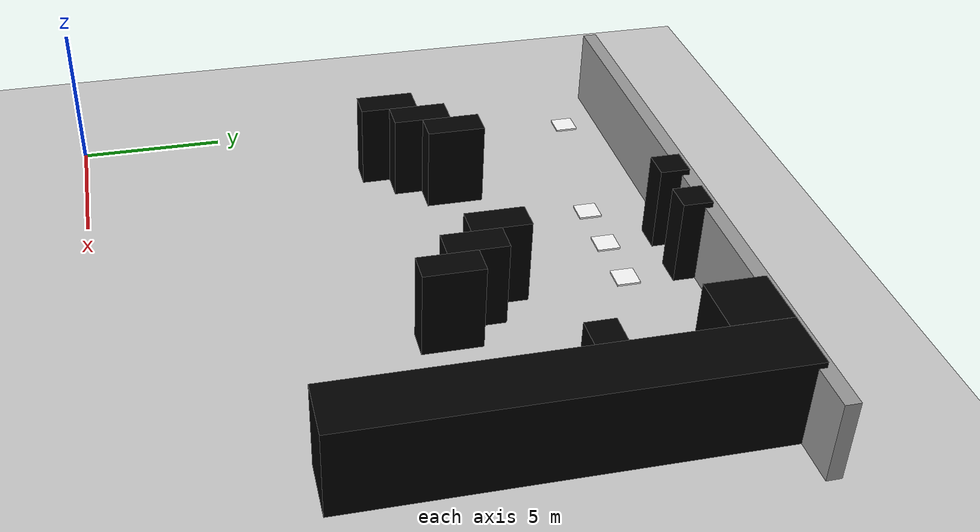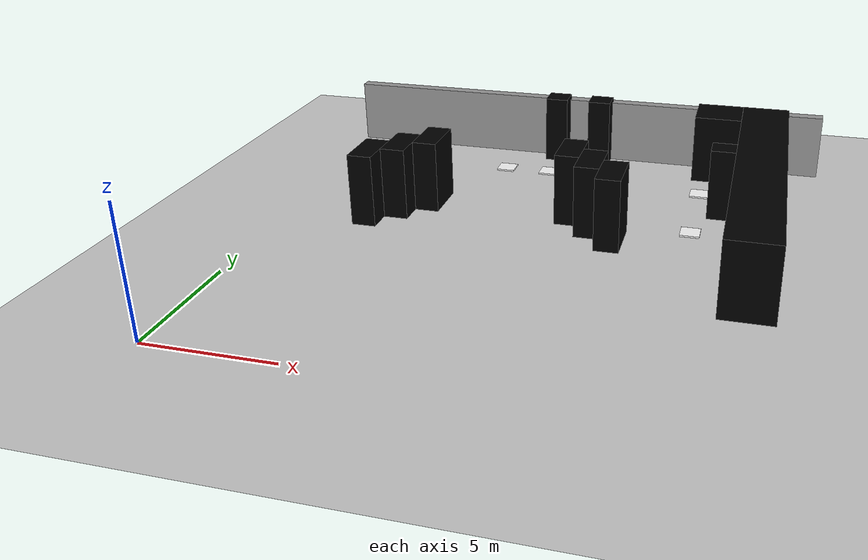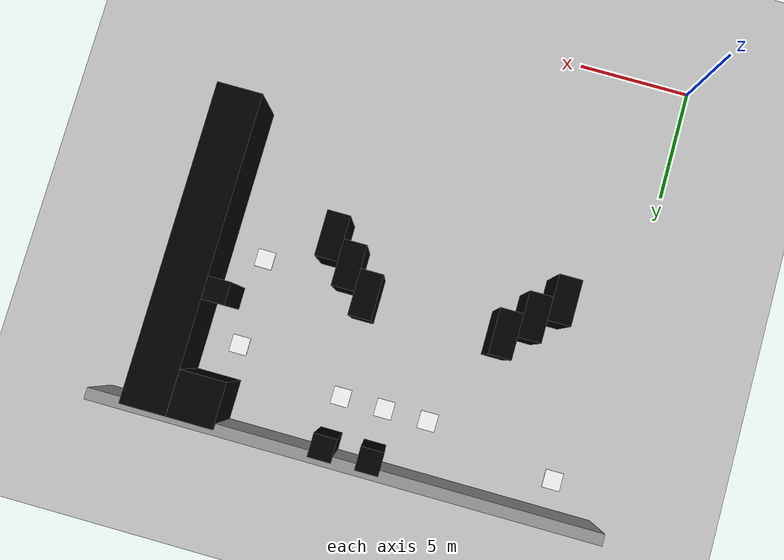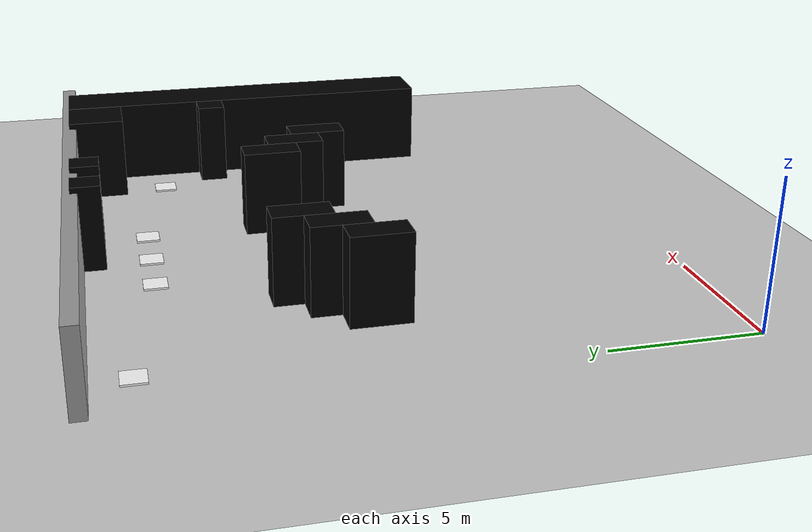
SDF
<sdf version="1.7">
 <world name="default">
  <model name="ground_plane">
   <static>1</static>
   <link name="link">
    <collision name="collision">
     <geometry><plane><normal>0 0 1</normal><size>100 100</size></plane></geometry>
     <surface><friction><ode><mu>100</mu><mu2>50</mu2></ode></friction></surface>
    </collision>
    <visual name="visual">
     <cast_shadows>0</cast_shadows>
     <geometry><plane><normal>0 0 1</normal><size>100 100</size></plane></geometry>
     <material>
      <script><uri>file://media/materials/scripts/gazebo.material</uri><name>Gazebo/Grey</name></script>
     </material>
    </visual>
   </link>
  </model>
  <model name="brick_black_2x2_11">
   <link name="chassis">
    <pose>0 0 1.5 0 -0 0</pose>
    <inertial>
     <mass>1</mass>
     <inertia><ixx>1</ixx><ixy>0</ixy><ixz>0</ixz><iyy>1</iyy><iyz>0</iyz><izz>1</izz></inertia>
    </inertial>
    <visual name="visual">
     <geometry><mesh><uri>model://brick_box_3x1x3/meshes/simple_box.dae</uri><scale>2 2 3</scale></mesh></geometry>
     <material>
      <script>
       <uri>model://brick_box_3x1x3/materials/scripts</uri>
       <uri>model://brick_box_3x1x3/materials/textures</uri>
       <name>BrickBox/Diffuse</name>
      </script>
      <shader type="vertex"><normal_map>__default__</normal_map></shader>
      <ambient>0 0 0 1</ambient>
      <diffuse>0 0 0 1</diffuse>
      <specular>0 0 0 1</specular>
      <emissive>0 0 0 1</emissive>
      <lighting>1</lighting>
     </material>
    </visual>
    <collision name="collision">
     <geometry><box><size>2 2 3</size></box></geometry>
     <surface>
      <friction>
       <ode><mu>1</mu><mu2>1</mu2><fdir1>0 0 0</fdir1><slip1>0</slip1><slip2>0</slip2></ode>
       <torsional>
        <coefficient>1</coefficient>
        <patch_radius>0</patch_radius>
        <surface_radius>0</surface_radius>
        <use_patch_radius>1</use_patch_radius>
        <ode><slip>0</slip></ode>
       </torsional>
      </friction>
      <bounce><restitution_coefficient>0</restitution_coefficient><threshold>1e+06</threshold></bounce>
      <contact>
       <collide_without_contact>0</collide_without_contact>
       <collide_without_contact_bitmask>1</collide_without_contact_bitmask>
       <collide_bitmask>1</collide_bitmask>
       <ode>
        <soft_cfm>0</soft_cfm>
        <soft_erp>0.2</soft_erp>
        <kp>1e+13</kp>
        <kd>1</kd>
        <max_vel>0.01</max_vel>
        <min_depth>0</min_depth>
       </ode>
       <bullet>
        <split_impulse>1</split_impulse>
        <split_impulse_penetration_threshold>-0.01</split_impulse_penetration_threshold>
        <soft_cfm>0</soft_cfm>
        <soft_erp>0.2</soft_erp>
        <kp>1e+13</kp>
        <kd>1</kd>
       </bullet>
      </contact>
     </surface>
    </collision>
   </link>
   <static>1</static>
   <pose>17 19 0 0 -0 0</pose>
  </model>
  <model name="grey_wall_22_0">
   <link name="link">
    <pose>0 0 1.4 0 -0 0</pose>
    <inertial>
     <mass>1</mass>
     <inertia><ixx>1</ixx><ixy>0</ixy><ixz>0</ixz><iyy>1</iyy><iyz>0</iyz><izz>1</izz></inertia>
    </inertial>
    <visual name="visual">
     <cast_shadows>0</cast_shadows>
     <geometry><box><size>22 0.5 2.8</size></box></geometry>
     <material>
      <script>
       <uri>model://grey_wall/materials/scripts</uri>
       <uri>model://grey_wall/materials/textures</uri>
       <name>vrc/grey_wall</name>
      </script>
      <shader type="vertex"><normal_map>__default__</normal_map></shader>
      <ambient>1 1 1 1</ambient>
      <diffuse>1 1 1 1</diffuse>
      <specular>0 0 0 1</specular>
      <emissive>0 0 0 1</emissive>
     </material>
    </visual>
    <collision name="collision">
     <geometry><box><size>22 0.5 2.8</size></box></geometry>
     <surface>
      <friction>
       <ode><mu>1</mu><mu2>1</mu2><fdir1>0 0 0</fdir1><slip1>0</slip1><slip2>0</slip2></ode>
       <torsional>
        <coefficient>1</coefficient>
        <patch_radius>0</patch_radius>
        <surface_radius>0</surface_radius>
        <use_patch_radius>1</use_patch_radius>
        <ode><slip>0</slip></ode>
       </torsional>
      </friction>
      <bounce><restitution_coefficient>0</restitution_coefficient><threshold>1e+06</threshold></bounce>
      <contact>
       <collide_without_contact>0</collide_without_contact>
       <collide_without_contact_bitmask>1</collide_without_contact_bitmask>
       <collide_bitmask>1</collide_bitmask>
       <ode>
        <soft_cfm>0</soft_cfm>
        <soft_erp>0.2</soft_erp>
        <kp>1e+13</kp>
        <kd>1</kd>
        <max_vel>0.01</max_vel>
        <min_depth>0</min_depth>
       </ode>
       <bullet>
        <split_impulse>1</split_impulse>
        <split_impulse_penetration_threshold>-0.01</split_impulse_penetration_threshold>
        <soft_cfm>0</soft_cfm>
        <soft_erp>0.2</soft_erp>
        <kp>1e+13</kp>
        <kd>1</kd>
       </bullet>
      </contact>
     </surface>
    </collision>
   </link>
   <static>1</static>
   <pose>10.5 20 0 0 -0 0</pose>
  </model>
  <model name="brick_black_1x1_1">
   <link name="chassis">
    <pose>0 0 1.5 0 -0 0</pose>
    <inertial>
     <mass>1</mass>
     <inertia><ixx>1</ixx><ixy>0</ixy><ixz>0</ixz><iyy>1</iyy><iyz>0</iyz><izz>1</izz></inertia>
    </inertial>
    <visual name="visual">
     <geometry><mesh><uri>model://brick_box_3x1x3/meshes/simple_box.dae</uri><scale>1 1 3</scale></mesh></geometry>
     <material>
      <script>
       <uri>model://brick_box_3x1x3/materials/scripts</uri>
       <uri>model://brick_box_3x1x3/materials/textures</uri>
       <name>BrickBox/Diffuse</name>
      </script>
      <shader type="vertex"><normal_map>__default__</normal_map></shader>
      <ambient>0 0 0 1</ambient>
      <diffuse>0 0 0 1</diffuse>
      <specular>0 0 0 1</specular>
      <emissive>0 0 0 1</emissive>
      <lighting>1</lighting>
     </material>
    </visual>
    <collision name="collision">
     <geometry><box><size>1 1 3</size></box></geometry>
     <surface>
      <friction>
       <ode><mu>1</mu><mu2>1</mu2><fdir1>0 0 0</fdir1><slip1>0</slip1><slip2>0</slip2></ode>
       <torsional>
        <coefficient>1</coefficient>
        <patch_radius>0</patch_radius>
        <surface_radius>0</surface_radius>
        <use_patch_radius>1</use_patch_radius>
        <ode><slip>0</slip></ode>
       </torsional>
      </friction>
      <bounce><restitution_coefficient>0</restitution_coefficient><threshold>1e+06</threshold></bounce>
      <contact>
       <collide_without_contact>0</collide_without_contact>
       <collide_without_contact_bitmask>1</collide_without_contact_bitmask>
       <collide_bitmask>1</collide_bitmask>
       <ode>
        <soft_cfm>0</soft_cfm>
        <soft_erp>0.2</soft_erp>
        <kp>1e+13</kp>
        <kd>1</kd>
        <max_vel>0.01</max_vel>
        <min_depth>0</min_depth>
       </ode>
       <bullet>
        <split_impulse>1</split_impulse>
        <split_impulse_penetration_threshold>-0.01</split_impulse_penetration_threshold>
        <soft_cfm>0</soft_cfm>
        <soft_erp>0.2</soft_erp>
        <kp>1e+13</kp>
        <kd>1</kd>
       </bullet>
      </contact>
     </surface>
    </collision>
   </link>
   <static>1</static>
   <pose>17.5 14.5 0 0 -0 0</pose>
  </model>
  <model name="brick_black_1x2_1">
   <link name="chassis">
    <pose>0 0 1.5 0 -0 0</pose>
    <inertial>
     <mass>1</mass>
     <inertia><ixx>1</ixx><ixy>0</ixy><ixz>0</ixz><iyy>1</iyy><iyz>0</iyz><izz>1</izz></inertia>
    </inertial>
    <visual name="visual">
     <geometry><mesh><uri>model://brick_box_3x1x3/meshes/simple_box.dae</uri><scale>1 2 3</scale></mesh></geometry>
     <material>
      <script>
       <uri>model://brick_box_3x1x3/materials/scripts</uri>
       <uri>model://brick_box_3x1x3/materials/textures</uri>
       <name>BrickBox/Diffuse</name>
      </script>
      <shader type="vertex"><normal_map>__default__</normal_map></shader>
      <ambient>0 0 0 1</ambient>
      <diffuse>0 0 0 1</diffuse>
      <specular>0 0 0 1</specular>
      <emissive>0 0 0 1</emissive>
      <lighting>1</lighting>
     </material>
    </visual>
    <collision name="collision">
     <geometry><box><size>1 2 3</size></box></geometry>
     <surface>
      <friction>
       <ode><mu>1</mu><mu2>1</mu2><fdir1>0 0 0</fdir1><slip1>0</slip1><slip2>0</slip2></ode>
       <torsional>
        <coefficient>1</coefficient>
        <patch_radius>0</patch_radius>
        <surface_radius>0</surface_radius>
        <use_patch_radius>1</use_patch_radius>
        <ode><slip>0</slip></ode>
       </torsional>
      </friction>
      <bounce><restitution_coefficient>0</restitution_coefficient><threshold>1e+06</threshold></bounce>
      <contact>
       <collide_without_contact>0</collide_without_contact>
       <collide_without_contact_bitmask>1</collide_without_contact_bitmask>
       <collide_bitmask>1</collide_bitmask>
       <ode>
        <soft_cfm>0</soft_cfm>
        <soft_erp>0.2</soft_erp>
        <kp>1e+13</kp>
        <kd>1</kd>
        <max_vel>0.01</max_vel>
        <min_depth>0</min_depth>
       </ode>
       <bullet>
        <split_impulse>1</split_impulse>
        <split_impulse_penetration_threshold>-0.01</split_impulse_penetration_threshold>
        <soft_cfm>0</soft_cfm>
        <soft_erp>0.2</soft_erp>
        <kp>1e+13</kp>
        <kd>1</kd>
       </bullet>
      </contact>
     </surface>
    </collision>
   </link>
   <static>1</static>
   <pose>13.5 11 0 0 -0 0</pose>
  </model>
  <model name="brick_black_1x2_2">
   <link name="chassis">
    <pose>0 0 1.5 0 -0 0</pose>
    <inertial>
     <mass>1</mass>
     <inertia><ixx>1</ixx><ixy>0</ixy><ixz>0</ixz><iyy>1</iyy><iyz>0</iyz><izz>1</izz></inertia>
    </inertial>
    <visual name="visual">
     <geometry><mesh><uri>model://brick_box_3x1x3/meshes/simple_box.dae</uri><scale>1 2 3</scale></mesh></geometry>
     <material>
      <script>
       <uri>model://brick_box_3x1x3/materials/scripts</uri>
       <uri>model://brick_box_3x1x3/materials/textures</uri>
       <name>BrickBox/Diffuse</name>
      </script>
      <shader type="vertex"><normal_map>__default__</normal_map></shader>
      <ambient>0 0 0 1</ambient>
      <diffuse>0 0 0 1</diffuse>
      <specular>0 0 0 1</specular>
      <emissive>0 0 0 1</emissive>
      <lighting>1</lighting>
     </material>
    </visual>
    <collision name="collision">
     <geometry><box><size>1 2 3</size></box></geometry>
     <surface>
      <friction>
       <ode><mu>1</mu><mu2>1</mu2><fdir1>0 0 0</fdir1><slip1>0</slip1><slip2>0</slip2></ode>
       <torsional>
        <coefficient>1</coefficient>
        <patch_radius>0</patch_radius>
        <surface_radius>0</surface_radius>
        <use_patch_radius>1</use_patch_radius>
        <ode><slip>0</slip></ode>
       </torsional>
      </friction>
      <bounce><restitution_coefficient>0</restitution_coefficient><threshold>1e+06</threshold></bounce>
      <contact>
       <collide_without_contact>0</collide_without_contact>
       <collide_without_contact_bitmask>1</collide_without_contact_bitmask>
       <collide_bitmask>1</collide_bitmask>
       <ode>
        <soft_cfm>0</soft_cfm>
        <soft_erp>0.2</soft_erp>
        <kp>1e+13</kp>
        <kd>1</kd>
        <max_vel>0.01</max_vel>
        <min_depth>0</min_depth>
       </ode>
       <bullet>
        <split_impulse>1</split_impulse>
        <split_impulse_penetration_threshold>-0.01</split_impulse_penetration_threshold>
        <soft_cfm>0</soft_cfm>
        <soft_erp>0.2</soft_erp>
        <kp>1e+13</kp>
        <kd>1</kd>
       </bullet>
      </contact>
     </surface>
    </collision>
   </link>
   <static>1</static>
   <pose>12.5 12 0 0 -0 0</pose>
  </model>
  <model name="brick_black_1x2_3">
   <link name="chassis">
    <pose>0 0 1.5 0 -0 0</pose>
    <inertial>
     <mass>1</mass>
     <inertia><ixx>1</ixx><ixy>0</ixy><ixz>0</ixz><iyy>1</iyy><iyz>0</iyz><izz>1</izz></inertia>
    </inertial>
    <visual name="visual">
     <geometry><mesh><uri>model://brick_box_3x1x3/meshes/simple_box.dae</uri><scale>1 2 3</scale></mesh></geometry>
     <material>
      <script>
       <uri>model://brick_box_3x1x3/materials/scripts</uri>
       <uri>model://brick_box_3x1x3/materials/textures</uri>
       <name>BrickBox/Diffuse</name>
      </script>
      <shader type="vertex"><normal_map>__default__</normal_map></shader>
      <ambient>0 0 0 1</ambient>
      <diffuse>0 0 0 1</diffuse>
      <specular>0 0 0 1</specular>
      <emissive>0 0 0 1</emissive>
      <lighting>1</lighting>
     </material>
    </visual>
    <collision name="collision">
     <geometry><box><size>1 2 3</size></box></geometry>
     <surface>
      <friction>
       <ode><mu>1</mu><mu2>1</mu2><fdir1>0 0 0</fdir1><slip1>0</slip1><slip2>0</slip2></ode>
       <torsional>
        <coefficient>1</coefficient>
        <patch_radius>0</patch_radius>
        <surface_radius>0</surface_radius>
        <use_patch_radius>1</use_patch_radius>
        <ode><slip>0</slip></ode>
       </torsional>
      </friction>
      <bounce><restitution_coefficient>0</restitution_coefficient><threshold>1e+06</threshold></bounce>
      <contact>
       <collide_without_contact>0</collide_without_contact>
       <collide_without_contact_bitmask>1</collide_without_contact_bitmask>
       <collide_bitmask>1</collide_bitmask>
       <ode>
        <soft_cfm>0</soft_cfm>
        <soft_erp>0.2</soft_erp>
        <kp>1e+13</kp>
        <kd>1</kd>
        <max_vel>0.01</max_vel>
        <min_depth>0</min_depth>
       </ode>
       <bullet>
        <split_impulse>1</split_impulse>
        <split_impulse_penetration_threshold>-0.01</split_impulse_penetration_threshold>
        <soft_cfm>0</soft_cfm>
        <soft_erp>0.2</soft_erp>
        <kp>1e+13</kp>
        <kd>1</kd>
       </bullet>
      </contact>
     </surface>
    </collision>
   </link>
   <static>1</static>
   <pose>11.5 13 0 0 -0 0</pose>
  </model>
  <model name="brick_black_1x2_4">
   <link name="chassis">
    <pose>0 0 1.5 0 -0 0</pose>
    <inertial>
     <mass>1</mass>
     <inertia><ixx>1</ixx><ixy>0</ixy><ixz>0</ixz><iyy>1</iyy><iyz>0</iyz><izz>1</izz></inertia>
    </inertial>
    <visual name="visual">
     <geometry><mesh><uri>model://brick_box_3x1x3/meshes/simple_box.dae</uri><scale>1 2 3</scale></mesh></geometry>
     <material>
      <script>
       <uri>model://brick_box_3x1x3/materials/scripts</uri>
       <uri>model://brick_box_3x1x3/materials/textures</uri>
       <name>BrickBox/Diffuse</name>
      </script>
      <shader type="vertex"><normal_map>__default__</normal_map></shader>
      <ambient>0 0 0 1</ambient>
      <diffuse>0 0 0 1</diffuse>
      <specular>0 0 0 1</specular>
      <emissive>0 0 0 1</emissive>
      <lighting>1</lighting>
     </material>
    </visual>
    <collision name="collision">
     <geometry><box><size>1 2 3</size></box></geometry>
     <surface>
      <friction>
       <ode><mu>1</mu><mu2>1</mu2><fdir1>0 0 0</fdir1><slip1>0</slip1><slip2>0</slip2></ode>
       <torsional>
        <coefficient>1</coefficient>
        <patch_radius>0</patch_radius>
        <surface_radius>0</surface_radius>
        <use_patch_radius>1</use_patch_radius>
        <ode><slip>0</slip></ode>
       </torsional>
      </friction>
      <bounce><restitution_coefficient>0</restitution_coefficient><threshold>1e+06</threshold></bounce>
      <contact>
       <collide_without_contact>0</collide_without_contact>
       <collide_without_contact_bitmask>1</collide_without_contact_bitmask>
       <collide_bitmask>1</collide_bitmask>
       <ode>
        <soft_cfm>0</soft_cfm>
        <soft_erp>0.2</soft_erp>
        <kp>1e+13</kp>
        <kd>1</kd>
        <max_vel>0.01</max_vel>
        <min_depth>0</min_depth>
       </ode>
       <bullet>
        <split_impulse>1</split_impulse>
        <split_impulse_penetration_threshold>-0.01</split_impulse_penetration_threshold>
        <soft_cfm>0</soft_cfm>
        <soft_erp>0.2</soft_erp>
        <kp>1e+13</kp>
        <kd>1</kd>
       </bullet>
      </contact>
     </surface>
    </collision>
   </link>
   <static>1</static>
   <pose>5.5 13 0 0 -0 0</pose>
  </model>
  <model name="brick_black_1x2_5">
   <link name="chassis">
    <pose>0 0 1.5 0 -0 0</pose>
    <inertial>
     <mass>1</mass>
     <inertia><ixx>1</ixx><ixy>0</ixy><ixz>0</ixz><iyy>1</iyy><iyz>0</iyz><izz>1</izz></inertia>
    </inertial>
    <visual name="visual">
     <geometry><mesh><uri>model://brick_box_3x1x3/meshes/simple_box.dae</uri><scale>1 2 3</scale></mesh></geometry>
     <material>
      <script>
       <uri>model://brick_box_3x1x3/materials/scripts</uri>
       <uri>model://brick_box_3x1x3/materials/textures</uri>
       <name>BrickBox/Diffuse</name>
      </script>
      <shader type="vertex"><normal_map>__default__</normal_map></shader>
      <ambient>0 0 0 1</ambient>
      <diffuse>0 0 0 1</diffuse>
      <specular>0 0 0 1</specular>
      <emissive>0 0 0 1</emissive>
      <lighting>1</lighting>
     </material>
    </visual>
    <collision name="collision">
     <geometry><box><size>1 2 3</size></box></geometry>
     <surface>
      <friction>
       <ode><mu>1</mu><mu2>1</mu2><fdir1>0 0 0</fdir1><slip1>0</slip1><slip2>0</slip2></ode>
       <torsional>
        <coefficient>1</coefficient>
        <patch_radius>0</patch_radius>
        <surface_radius>0</surface_radius>
        <use_patch_radius>1</use_patch_radius>
        <ode><slip>0</slip></ode>
       </torsional>
      </friction>
      <bounce><restitution_coefficient>0</restitution_coefficient><threshold>1e+06</threshold></bounce>
      <contact>
       <collide_without_contact>0</collide_without_contact>
       <collide_without_contact_bitmask>1</collide_without_contact_bitmask>
       <collide_bitmask>1</collide_bitmask>
       <ode>
        <soft_cfm>0</soft_cfm>
        <soft_erp>0.2</soft_erp>
        <kp>1e+13</kp>
        <kd>1</kd>
        <max_vel>0.01</max_vel>
        <min_depth>0</min_depth>
       </ode>
       <bullet>
        <split_impulse>1</split_impulse>
        <split_impulse_penetration_threshold>-0.01</split_impulse_penetration_threshold>
        <soft_cfm>0</soft_cfm>
        <soft_erp>0.2</soft_erp>
        <kp>1e+13</kp>
        <kd>1</kd>
       </bullet>
      </contact>
     </surface>
    </collision>
   </link>
   <static>1</static>
   <pose>4.5 12 0 0 -0 0</pose>
  </model>
  <model name="brick_black_1x2_6">
   <link name="chassis">
    <pose>0 0 1.5 0 -0 0</pose>
    <inertial>
     <mass>1</mass>
     <inertia><ixx>1</ixx><ixy>0</ixy><ixz>0</ixz><iyy>1</iyy><iyz>0</iyz><izz>1</izz></inertia>
    </inertial>
    <visual name="visual">
     <geometry><mesh><uri>model://brick_box_3x1x3/meshes/simple_box.dae</uri><scale>1 2 3</scale></mesh></geometry>
     <material>
      <script>
       <uri>model://brick_box_3x1x3/materials/scripts</uri>
       <uri>model://brick_box_3x1x3/materials/textures</uri>
       <name>BrickBox/Diffuse</name>
      </script>
      <shader type="vertex"><normal_map>__default__</normal_map></shader>
      <ambient>0 0 0 1</ambient>
      <diffuse>0 0 0 1</diffuse>
      <specular>0 0 0 1</specular>
      <emissive>0 0 0 1</emissive>
      <lighting>1</lighting>
     </material>
    </visual>
    <collision name="collision">
     <geometry><box><size>1 2 3</size></box></geometry>
     <surface>
      <friction>
       <ode><mu>1</mu><mu2>1</mu2><fdir1>0 0 0</fdir1><slip1>0</slip1><slip2>0</slip2></ode>
       <torsional>
        <coefficient>1</coefficient>
        <patch_radius>0</patch_radius>
        <surface_radius>0</surface_radius>
        <use_patch_radius>1</use_patch_radius>
        <ode><slip>0</slip></ode>
       </torsional>
      </friction>
      <bounce><restitution_coefficient>0</restitution_coefficient><threshold>1e+06</threshold></bounce>
      <contact>
       <collide_without_contact>0</collide_without_contact>
       <collide_without_contact_bitmask>1</collide_without_contact_bitmask>
       <collide_bitmask>1</collide_bitmask>
       <ode>
        <soft_cfm>0</soft_cfm>
        <soft_erp>0.2</soft_erp>
        <kp>1e+13</kp>
        <kd>1</kd>
        <max_vel>0.01</max_vel>
        <min_depth>0</min_depth>
       </ode>
       <bullet>
        <split_impulse>1</split_impulse>
        <split_impulse_penetration_threshold>-0.01</split_impulse_penetration_threshold>
        <soft_cfm>0</soft_cfm>
        <soft_erp>0.2</soft_erp>
        <kp>1e+13</kp>
        <kd>1</kd>
       </bullet>
      </contact>
     </surface>
    </collision>
   </link>
   <static>1</static>
   <pose>3.5 11 0 0 -0 0</pose>
  </model>
  <model name="brick_black_1x1_3">
   <link name="chassis">
    <pose>0 0 1.5 0 -0 0</pose>
    <inertial>
     <mass>1</mass>
     <inertia><ixx>1</ixx><ixy>0</ixy><ixz>0</ixz><iyy>1</iyy><iyz>0</iyz><izz>1</izz></inertia>
    </inertial>
    <visual name="visual">
     <geometry><mesh><uri>model://brick_box_3x1x3/meshes/simple_box.dae</uri><scale>1 1 3</scale></mesh></geometry>
     <material>
      <script>
       <uri>model://brick_box_3x1x3/materials/scripts</uri>
       <uri>model://brick_box_3x1x3/materials/textures</uri>
       <name>BrickBox/Diffuse</name>
      </script>
      <shader type="vertex"><normal_map>__default__</normal_map></shader>
      <ambient>0 0 0 1</ambient>
      <diffuse>0 0 0 1</diffuse>
      <specular>0 0 0 1</specular>
      <emissive>0 0 0 1</emissive>
      <lighting>1</lighting>
     </material>
    </visual>
    <collision name="collision">
     <geometry><box><size>1 1 3</size></box></geometry>
     <surface>
      <friction>
       <ode><mu>1</mu><mu2>1</mu2><fdir1>0 0 0</fdir1><slip1>0</slip1><slip2>0</slip2></ode>
       <torsional>
        <coefficient>1</coefficient>
        <patch_radius>0</patch_radius>
        <surface_radius>0</surface_radius>
        <use_patch_radius>1</use_patch_radius>
        <ode><slip>0</slip></ode>
       </torsional>
      </friction>
      <bounce><restitution_coefficient>0</restitution_coefficient><threshold>1e+06</threshold></bounce>
      <contact>
       <collide_without_contact>0</collide_without_contact>
       <collide_without_contact_bitmask>1</collide_without_contact_bitmask>
       <collide_bitmask>1</collide_bitmask>
       <ode>
        <soft_cfm>0</soft_cfm>
        <soft_erp>0.2</soft_erp>
        <kp>1e+13</kp>
        <kd>1</kd>
        <max_vel>0.01</max_vel>
        <min_depth>0</min_depth>
       </ode>
       <bullet>
        <split_impulse>1</split_impulse>
        <split_impulse_penetration_threshold>-0.01</split_impulse_penetration_threshold>
        <soft_cfm>0</soft_cfm>
        <soft_erp>0.2</soft_erp>
        <kp>1e+13</kp>
        <kd>1</kd>
       </bullet>
      </contact>
     </surface>
    </collision>
   </link>
   <static>1</static>
   <pose>11.5 19.5 0 0 -0 0</pose>
  </model>
  <model name="brick_black_1x1_4">
   <link name="chassis">
    <pose>0 0 1.5 0 -0 0</pose>
    <inertial>
     <mass>1</mass>
     <inertia><ixx>1</ixx><ixy>0</ixy><ixz>0</ixz><iyy>1</iyy><iyz>0</iyz><izz>1</izz></inertia>
    </inertial>
    <visual name="visual">
     <geometry><mesh><uri>model://brick_box_3x1x3/meshes/simple_box.dae</uri><scale>1 1 3</scale></mesh></geometry>
     <material>
      <script>
       <uri>model://brick_box_3x1x3/materials/scripts</uri>
       <uri>model://brick_box_3x1x3/materials/textures</uri>
       <name>BrickBox/Diffuse</name>
      </script>
      <shader type="vertex"><normal_map>__default__</normal_map></shader>
      <ambient>0 0 0 1</ambient>
      <diffuse>0 0 0 1</diffuse>
      <specular>0 0 0 1</specular>
      <emissive>0 0 0 1</emissive>
      <lighting>1</lighting>
     </material>
    </visual>
    <collision name="collision">
     <geometry><box><size>1 1 3</size></box></geometry>
     <surface>
      <friction>
       <ode><mu>1</mu><mu2>1</mu2><fdir1>0 0 0</fdir1><slip1>0</slip1><slip2>0</slip2></ode>
       <torsional>
        <coefficient>1</coefficient>
        <patch_radius>0</patch_radius>
        <surface_radius>0</surface_radius>
        <use_patch_radius>1</use_patch_radius>
        <ode><slip>0</slip></ode>
       </torsional>
      </friction>
      <bounce><restitution_coefficient>0</restitution_coefficient><threshold>1e+06</threshold></bounce>
      <contact>
       <collide_without_contact>0</collide_without_contact>
       <collide_without_contact_bitmask>1</collide_without_contact_bitmask>
       <collide_bitmask>1</collide_bitmask>
       <ode>
        <soft_cfm>0</soft_cfm>
        <soft_erp>0.2</soft_erp>
        <kp>1e+13</kp>
        <kd>1</kd>
        <max_vel>0.01</max_vel>
        <min_depth>0</min_depth>
       </ode>
       <bullet>
        <split_impulse>1</split_impulse>
        <split_impulse_penetration_threshold>-0.01</split_impulse_penetration_threshold>
        <soft_cfm>0</soft_cfm>
        <soft_erp>0.2</soft_erp>
        <kp>1e+13</kp>
        <kd>1</kd>
       </bullet>
      </contact>
     </surface>
    </collision>
   </link>
   <static>1</static>
   <pose>9.5 19.5 0 0 -0 0</pose>
  </model>
  <model name="brick_black_14x2_0">
   <link name="chassis">
    <pose>0 0 1.5 0 -0 0</pose>
    <inertial>
     <mass>1</mass>
     <inertia><ixx>1</ixx><ixy>0</ixy><ixz>0</ixz><iyy>1</iyy><iyz>0</iyz><izz>1</izz></inertia>
    </inertial>
    <visual name="visual">
     <geometry>
      <mesh><uri>model://brick_box_3x1x3/meshes/simple_box.dae</uri><scale>14 2 3</scale></mesh>
     </geometry>
     <material>
      <script>
       <uri>model://brick_box_3x1x3/materials/scripts</uri>
       <uri>model://brick_box_3x1x3/materials/textures</uri>
       <name>BrickBox/Diffuse</name>
      </script>
      <shader type="vertex"><normal_map>__default__</normal_map></shader>
      <ambient>0 0 0 1</ambient>
      <diffuse>0 0 0 1</diffuse>
      <specular>0 0 0 1</specular>
      <emissive>0 0 0 1</emissive>
      <lighting>1</lighting>
     </material>
    </visual>
    <collision name="collision">
     <geometry><box><size>14 2 3</size></box></geometry>
     <surface>
      <friction>
       <ode><mu>1</mu><mu2>1</mu2><fdir1>0 0 0</fdir1><slip1>0</slip1><slip2>0</slip2></ode>
       <torsional>
        <coefficient>1</coefficient>
        <patch_radius>0</patch_radius>
        <surface_radius>0</surface_radius>
        <use_patch_radius>1</use_patch_radius>
        <ode><slip>0</slip></ode>
       </torsional>
      </friction>
      <bounce><restitution_coefficient>0</restitution_coefficient><threshold>1e+06</threshold></bounce>
      <contact>
       <collide_without_contact>0</collide_without_contact>
       <collide_without_contact_bitmask>1</collide_without_contact_bitmask>
       <collide_bitmask>1</collide_bitmask>
       <ode>
        <soft_cfm>0</soft_cfm>
        <soft_erp>0.2</soft_erp>
        <kp>1e+13</kp>
        <kd>1</kd>
        <max_vel>0.01</max_vel>
        <min_depth>0</min_depth>
       </ode>
       <bullet>
        <split_impulse>1</split_impulse>
        <split_impulse_penetration_threshold>-0.01</split_impulse_penetration_threshold>
        <soft_cfm>0</soft_cfm>
        <soft_erp>0.2</soft_erp>
        <kp>1e+13</kp>
        <kd>1</kd>
       </bullet>
      </contact>
     </surface>
    </collision>
   </link>
   <static>1</static>
   <pose>19 13 0 0 -0 1.57</pose>
  </model>
  <model name="number1">
   <link name="link">
    <inertial>
     <mass>1</mass>
     <inertia><ixx>1</ixx><ixy>0</ixy><ixz>0</ixz><iyy>1</iyy><iyz>0</iyz><izz>1</izz></inertia>
    </inertial>
    <visual name="visual">
     <geometry><mesh><uri>model://number1/meshes/number.dae</uri><scale>1 1 0.1</scale></mesh></geometry>
     <material>
      <script>
       <uri>model://number1/materials/scripts</uri>
       <uri>model://number1/materials/textures</uri>
       <name>Number/One</name>
      </script>
      <shader type="pixel"><normal_map>__default__</normal_map></shader>
      <ambient>1 1 1 1</ambient>
      <diffuse>1 1 1 1</diffuse>
      <specular>0 0 0 1</specular>
      <emissive>0 0 0 1</emissive>
     </material>
    </visual>
   </link>
   <static>1</static>
   <pose>16.5 16.5 0 0 -0 3.14</pose>
  </model>
  <model name="number2">
   <link name="link">
    <inertial>
     <mass>1</mass>
     <inertia><ixx>1</ixx><ixy>0</ixy><ixz>0</ixz><iyy>1</iyy><iyz>0</iyz><izz>1</izz></inertia>
    </inertial>
    <visual name="visual">
     <geometry><mesh><uri>model://number1/meshes/number.dae</uri><scale>1 1 0.1</scale></mesh></geometry>
     <material>
      <script>
       <uri>model://number2/materials/scripts</uri>
       <uri>model://number2/materials/textures</uri>
       <name>Number/Two</name>
      </script>
      <shader type="pixel"><normal_map>__default__</normal_map></shader>
      <ambient>1 1 1 1</ambient>
      <diffuse>1 1 1 1</diffuse>
      <specular>0 0 0 1</specular>
      <emissive>0 0 0 1</emissive>
     </material>
    </visual>
   </link>
   <static>1</static>
   <pose>16.5 12.5 0 0 -0 3.14</pose>
  </model>
  <model name="number4">
   <link name="link">
    <inertial>
     <mass>1</mass>
     <inertia><ixx>1</ixx><ixy>0</ixy><ixz>0</ixz><iyy>1</iyy><iyz>0</iyz><izz>1</izz></inertia>
    </inertial>
    <visual name="visual">
     <geometry><mesh><uri>model://number1/meshes/number.dae</uri><scale>1 1 0.1</scale></mesh></geometry>
     <material>
      <script>
       <uri>model://number4/materials/scripts</uri>
       <uri>model://number4/materials/textures</uri>
       <name>Number/Four</name>
      </script>
      <shader type="pixel"><normal_map>__default__</normal_map></shader>
      <ambient>1 1 1 1</ambient>
      <diffuse>1 1 1 1</diffuse>
      <specular>0 0 0 1</specular>
      <emissive>0 0 0 1</emissive>
     </material>
    </visual>
   </link>
   <static>1</static>
   <pose>1.5 18.5 0 0 -0 0</pose>
  </model>
  <model name="number5">
   <link name="link">
    <inertial>
     <mass>1</mass>
     <inertia><ixx>1</ixx><ixy>0</ixy><ixz>0</ixz><iyy>1</iyy><iyz>0</iyz><izz>1</izz></inertia>
    </inertial>
    <visual name="visual">
     <geometry><mesh><uri>model://number1/meshes/number.dae</uri><scale>1 1 0.1</scale></mesh></geometry>
     <material>
      <script>
       <uri>model://number5/materials/scripts</uri>
       <uri>model://number5/materials/textures</uri>
       <name>Number/Five</name>
      </script>
      <shader type="pixel"><normal_map>__default__</normal_map></shader>
      <ambient>1 1 1 1</ambient>
      <diffuse>1 1 1 1</diffuse>
      <specular>0 0 0 1</specular>
      <emissive>0 0 0 1</emissive>
     </material>
    </visual>
   </link>
   <static>1</static>
   <pose>11.5 17.5 0 0 -0 3.14</pose>
  </model>
  <model name="number6">
   <link name="link">
    <inertial>
     <mass>1</mass>
     <inertia><ixx>1</ixx><ixy>0</ixy><ixz>0</ixz><iyy>1</iyy><iyz>0</iyz><izz>1</izz></inertia>
    </inertial>
    <visual name="visual">
     <geometry><mesh><uri>model://number1/meshes/number.dae</uri><scale>1 1 0.1</scale></mesh></geometry>
     <material>
      <script>
       <uri>model://number6/materials/scripts</uri>
       <uri>model://number6/materials/textures</uri>
       <name>Number/Six</name>
      </script>
      <shader type="pixel"><normal_map>__default__</normal_map></shader>
      <ambient>1 1 1 1</ambient>
      <diffuse>1 1 1 1</diffuse>
      <specular>0 0 0 1</specular>
      <emissive>0 0 0 1</emissive>
     </material>
    </visual>
   </link>
   <static>1</static>
   <pose>9.5 17.5 0 0 -0 3.14</pose>
  </model>
  <model name="number7">
   <link name="link">
    <inertial>
     <mass>1</mass>
     <inertia><ixx>1</ixx><ixy>0</ixy><ixz>0</ixz><iyy>1</iyy><iyz>0</iyz><izz>1</izz></inertia>
    </inertial>
    <visual name="visual">
     <geometry><mesh><uri>model://number1/meshes/number.dae</uri><scale>1 1 0.1</scale></mesh></geometry>
     <material>
      <script>
       <uri>model://number7/materials/scripts</uri>
       <uri>model://number7/materials/textures</uri>
       <name>Number/Seven</name>
      </script>
      <shader type="pixel"><normal_map>__default__</normal_map></shader>
      <ambient>1 1 1 1</ambient>
      <diffuse>1 1 1 1</diffuse>
      <specular>0 0 0 1</specular>
      <emissive>0 0 0 1</emissive>
     </material>
    </visual>
   </link>
   <static>1</static>
   <pose>7.5 17.5 0 0 -0 3.14</pose>
  </model>
 </world>
</sdf>
